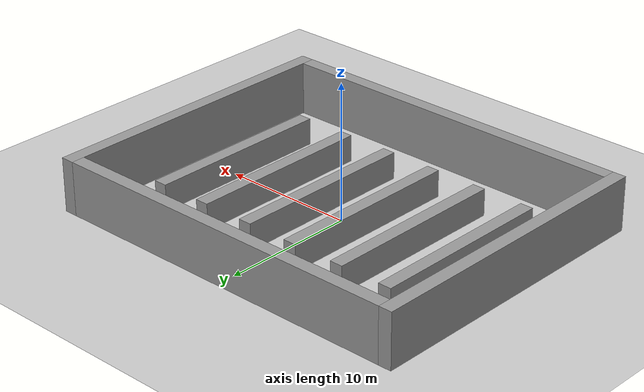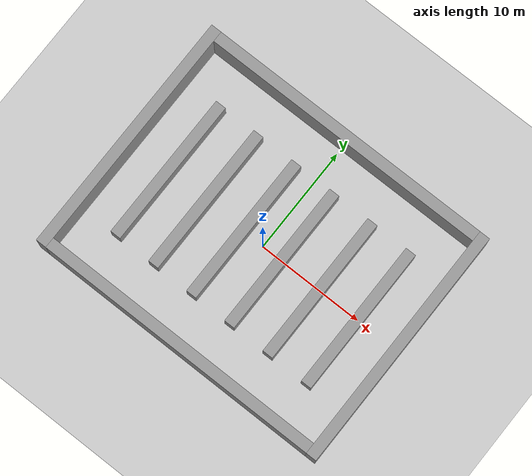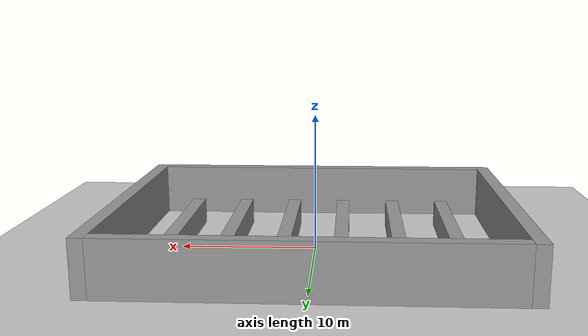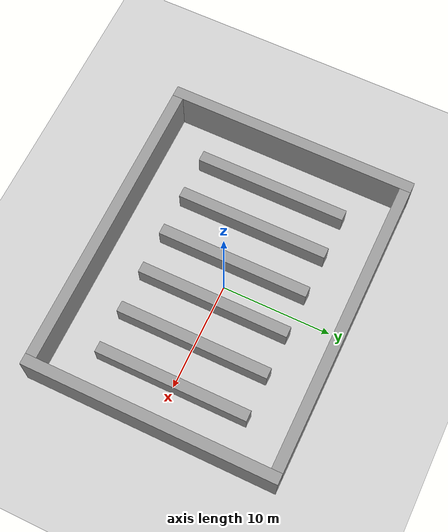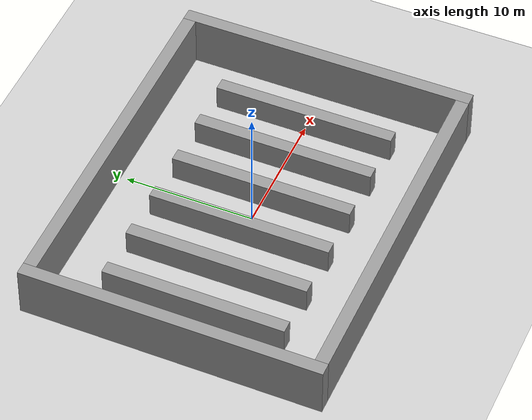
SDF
<sdf version="1.6">
 <world name="default">
  <light name="sun" type="directional">
   <pose>0 0 10 0 -0 0</pose>
   <diffuse>0.8 0.8 0.8 1</diffuse>
   <specular>0.2 0.2 0.2 1</specular>
   <attenuation>
    <range>1000</range>
    <constant>0.9</constant>
    <linear>0.01</linear>
    <quadratic>0.001</quadratic>
   </attenuation>
   <direction>-0.5 0.1 -0.9</direction>
  </light>
  <model name="ground_plane">
   <static>1</static>
   <link name="link">
    <collision name="collision">
     <geometry><plane><normal>0 0 1</normal><size>100 100</size></plane></geometry>
     <surface>
      <contact><collide_bitmask>65535</collide_bitmask></contact>
      <friction><ode><mu>100</mu><mu2>50</mu2></ode></friction>
     </surface>
    </collision>
    <visual name="visual">
     <cast_shadows>0</cast_shadows>
     <geometry><plane><normal>0 0 1</normal><size>100 100</size></plane></geometry>
     <material>
      <script><uri>file://media/materials/scripts/gazebo.material</uri><name>Gazebo/Grey</name></script>
     </material>
    </visual>
   </link>
  </model>
  <gravity>0 0 -9.8</gravity>
  <magnetic_field>6e-06 2.3e-05 -4.2e-05</magnetic_field>
  <atmosphere type="adiabatic"/>
  <physics name="default_physics" default="0" type="ode">
   <max_step_size>0.001</max_step_size>
   <real_time_factor>1</real_time_factor>
   <real_time_update_rate>1000</real_time_update_rate>
  </physics>
  <scene><ambient>0.4 0.4 0.4 1</ambient><background>0.7 0.7 0.7 1</background><shadows>1</shadows></scene>
  <audio><device>default</device></audio>
  <spherical_coordinates>
   <surface_model>EARTH_WGS84</surface_model>
   <latitude_deg>0</latitude_deg>
   <longitude_deg>0</longitude_deg>
   <elevation>0</elevation>
   <heading_deg>0</heading_deg>
  </spherical_coordinates>
  <model name="shelf">
   <link name="link">
    <inertial>
     <mass>1</mass>
     <inertia>
      <ixx>0.166667</ixx>
      <ixy>0</ixy>
      <ixz>0</ixz>
      <iyy>0.166667</iyy>
      <iyz>0</iyz>
      <izz>0.166667</izz>
     </inertia>
    </inertial>
    <visual name="visual">
     <geometry><box><size>1 14 2</size></box></geometry>
     <material>
      <script><name>Gazebo/Grey</name><uri>file://media/materials/scripts/gazebo.material</uri></script>
     </material>
    </visual>
    <collision name="collision">
     <geometry><box><size>1 14 2</size></box></geometry>
     <surface>
      <friction>
       <ode><mu>1</mu><mu2>1</mu2><fdir1>0 0 0</fdir1><slip1>0</slip1><slip2>0</slip2></ode>
       <torsional>
        <coefficient>1</coefficient>
        <patch_radius>0</patch_radius>
        <surface_radius>0</surface_radius>
        <use_patch_radius>1</use_patch_radius>
        <ode><slip>0</slip></ode>
       </torsional>
      </friction>
      <bounce><restitution_coefficient>0</restitution_coefficient><threshold>1e+06</threshold></bounce>
      <contact>
       <collide_without_contact>0</collide_without_contact>
       <collide_without_contact_bitmask>1</collide_without_contact_bitmask>
       <collide_bitmask>1</collide_bitmask>
       <ode>
        <soft_cfm>0</soft_cfm>
        <soft_erp>0.2</soft_erp>
        <kp>1e+13</kp>
        <kd>1</kd>
        <max_vel>0.01</max_vel>
        <min_depth>0</min_depth>
       </ode>
       <bullet>
        <split_impulse>1</split_impulse>
        <split_impulse_penetration_threshold>-0.01</split_impulse_penetration_threshold>
        <soft_cfm>0</soft_cfm>
        <soft_erp>0.2</soft_erp>
        <kp>1e+13</kp>
        <kd>1</kd>
       </bullet>
      </contact>
     </surface>
    </collision>
   </link>
   <static>1</static>
   <pose>-10 0 1 0 -0 0</pose>
  </model>
  <model name="shelf_0">
   <link name="link">
    <inertial>
     <mass>1</mass>
     <inertia>
      <ixx>0.166667</ixx>
      <ixy>0</ixy>
      <ixz>0</ixz>
      <iyy>0.166667</iyy>
      <iyz>0</iyz>
      <izz>0.166667</izz>
     </inertia>
    </inertial>
    <visual name="visual">
     <geometry><box><size>1 14 2</size></box></geometry>
     <material>
      <script><name>Gazebo/Grey</name><uri>file://media/materials/scripts/gazebo.material</uri></script>
     </material>
    </visual>
    <collision name="collision">
     <geometry><box><size>1 14 2</size></box></geometry>
     <surface>
      <friction>
       <ode><mu>1</mu><mu2>1</mu2><fdir1>0 0 0</fdir1><slip1>0</slip1><slip2>0</slip2></ode>
       <torsional>
        <coefficient>1</coefficient>
        <patch_radius>0</patch_radius>
        <surface_radius>0</surface_radius>
        <use_patch_radius>1</use_patch_radius>
        <ode><slip>0</slip></ode>
       </torsional>
      </friction>
      <bounce><restitution_coefficient>0</restitution_coefficient><threshold>1e+06</threshold></bounce>
      <contact>
       <collide_without_contact>0</collide_without_contact>
       <collide_without_contact_bitmask>1</collide_without_contact_bitmask>
       <collide_bitmask>1</collide_bitmask>
       <ode>
        <soft_cfm>0</soft_cfm>
        <soft_erp>0.2</soft_erp>
        <kp>1e+13</kp>
        <kd>1</kd>
        <max_vel>0.01</max_vel>
        <min_depth>0</min_depth>
       </ode>
       <bullet>
        <split_impulse>1</split_impulse>
        <split_impulse_penetration_threshold>-0.01</split_impulse_penetration_threshold>
        <soft_cfm>0</soft_cfm>
        <soft_erp>0.2</soft_erp>
        <kp>1e+13</kp>
        <kd>1</kd>
       </bullet>
      </contact>
     </surface>
    </collision>
   </link>
   <static>1</static>
   <pose>-6 0 1 0 -0 0</pose>
  </model>
  <model name="shelf_1">
   <link name="link">
    <inertial>
     <mass>1</mass>
     <inertia>
      <ixx>0.166667</ixx>
      <ixy>0</ixy>
      <ixz>0</ixz>
      <iyy>0.166667</iyy>
      <iyz>0</iyz>
      <izz>0.166667</izz>
     </inertia>
    </inertial>
    <visual name="visual">
     <geometry><box><size>1 14 2</size></box></geometry>
     <material>
      <script><name>Gazebo/Grey</name><uri>file://media/materials/scripts/gazebo.material</uri></script>
     </material>
    </visual>
    <collision name="collision">
     <geometry><box><size>1 14 2</size></box></geometry>
     <surface>
      <friction>
       <ode><mu>1</mu><mu2>1</mu2><fdir1>0 0 0</fdir1><slip1>0</slip1><slip2>0</slip2></ode>
       <torsional>
        <coefficient>1</coefficient>
        <patch_radius>0</patch_radius>
        <surface_radius>0</surface_radius>
        <use_patch_radius>1</use_patch_radius>
        <ode><slip>0</slip></ode>
       </torsional>
      </friction>
      <bounce><restitution_coefficient>0</restitution_coefficient><threshold>1e+06</threshold></bounce>
      <contact>
       <collide_without_contact>0</collide_without_contact>
       <collide_without_contact_bitmask>1</collide_without_contact_bitmask>
       <collide_bitmask>1</collide_bitmask>
       <ode>
        <soft_cfm>0</soft_cfm>
        <soft_erp>0.2</soft_erp>
        <kp>1e+13</kp>
        <kd>1</kd>
        <max_vel>0.01</max_vel>
        <min_depth>0</min_depth>
       </ode>
       <bullet>
        <split_impulse>1</split_impulse>
        <split_impulse_penetration_threshold>-0.01</split_impulse_penetration_threshold>
        <soft_cfm>0</soft_cfm>
        <soft_erp>0.2</soft_erp>
        <kp>1e+13</kp>
        <kd>1</kd>
       </bullet>
      </contact>
     </surface>
    </collision>
   </link>
   <static>1</static>
   <pose>-2 0 1 0 -0 0</pose>
  </model>
  <model name="shelf_2">
   <link name="link">
    <inertial>
     <mass>1</mass>
     <inertia>
      <ixx>0.166667</ixx>
      <ixy>0</ixy>
      <ixz>0</ixz>
      <iyy>0.166667</iyy>
      <iyz>0</iyz>
      <izz>0.166667</izz>
     </inertia>
    </inertial>
    <visual name="visual">
     <geometry><box><size>1 14 2</size></box></geometry>
     <material>
      <script><name>Gazebo/Grey</name><uri>file://media/materials/scripts/gazebo.material</uri></script>
     </material>
    </visual>
    <collision name="collision">
     <geometry><box><size>1 14 2</size></box></geometry>
     <surface>
      <friction>
       <ode><mu>1</mu><mu2>1</mu2><fdir1>0 0 0</fdir1><slip1>0</slip1><slip2>0</slip2></ode>
       <torsional>
        <coefficient>1</coefficient>
        <patch_radius>0</patch_radius>
        <surface_radius>0</surface_radius>
        <use_patch_radius>1</use_patch_radius>
        <ode><slip>0</slip></ode>
       </torsional>
      </friction>
      <bounce><restitution_coefficient>0</restitution_coefficient><threshold>1e+06</threshold></bounce>
      <contact>
       <collide_without_contact>0</collide_without_contact>
       <collide_without_contact_bitmask>1</collide_without_contact_bitmask>
       <collide_bitmask>1</collide_bitmask>
       <ode>
        <soft_cfm>0</soft_cfm>
        <soft_erp>0.2</soft_erp>
        <kp>1e+13</kp>
        <kd>1</kd>
        <max_vel>0.01</max_vel>
        <min_depth>0</min_depth>
       </ode>
       <bullet>
        <split_impulse>1</split_impulse>
        <split_impulse_penetration_threshold>-0.01</split_impulse_penetration_threshold>
        <soft_cfm>0</soft_cfm>
        <soft_erp>0.2</soft_erp>
        <kp>1e+13</kp>
        <kd>1</kd>
       </bullet>
      </contact>
     </surface>
    </collision>
   </link>
   <static>1</static>
   <pose>2 0 1 0 -0 0</pose>
  </model>
  <model name="shelf_3">
   <link name="link">
    <inertial>
     <mass>1</mass>
     <inertia>
      <ixx>0.166667</ixx>
      <ixy>0</ixy>
      <ixz>0</ixz>
      <iyy>0.166667</iyy>
      <iyz>0</iyz>
      <izz>0.166667</izz>
     </inertia>
    </inertial>
    <visual name="visual">
     <geometry><box><size>1 14 2</size></box></geometry>
     <material>
      <script><name>Gazebo/Grey</name><uri>file://media/materials/scripts/gazebo.material</uri></script>
     </material>
    </visual>
    <collision name="collision">
     <geometry><box><size>1 14 2</size></box></geometry>
     <surface>
      <friction>
       <ode><mu>1</mu><mu2>1</mu2><fdir1>0 0 0</fdir1><slip1>0</slip1><slip2>0</slip2></ode>
       <torsional>
        <coefficient>1</coefficient>
        <patch_radius>0</patch_radius>
        <surface_radius>0</surface_radius>
        <use_patch_radius>1</use_patch_radius>
        <ode><slip>0</slip></ode>
       </torsional>
      </friction>
      <bounce><restitution_coefficient>0</restitution_coefficient><threshold>1e+06</threshold></bounce>
      <contact>
       <collide_without_contact>0</collide_without_contact>
       <collide_without_contact_bitmask>1</collide_without_contact_bitmask>
       <collide_bitmask>1</collide_bitmask>
       <ode>
        <soft_cfm>0</soft_cfm>
        <soft_erp>0.2</soft_erp>
        <kp>1e+13</kp>
        <kd>1</kd>
        <max_vel>0.01</max_vel>
        <min_depth>0</min_depth>
       </ode>
       <bullet>
        <split_impulse>1</split_impulse>
        <split_impulse_penetration_threshold>-0.01</split_impulse_penetration_threshold>
        <soft_cfm>0</soft_cfm>
        <soft_erp>0.2</soft_erp>
        <kp>1e+13</kp>
        <kd>1</kd>
       </bullet>
      </contact>
     </surface>
    </collision>
   </link>
   <static>1</static>
   <pose>6 0 1 0 -0 0</pose>
  </model>
  <model name="shelf_4">
   <link name="link">
    <inertial>
     <mass>1</mass>
     <inertia>
      <ixx>0.166667</ixx>
      <ixy>0</ixy>
      <ixz>0</ixz>
      <iyy>0.166667</iyy>
      <iyz>0</iyz>
      <izz>0.166667</izz>
     </inertia>
    </inertial>
    <visual name="visual">
     <geometry><box><size>1 14 2</size></box></geometry>
     <material>
      <script><name>Gazebo/Grey</name><uri>file://media/materials/scripts/gazebo.material</uri></script>
     </material>
    </visual>
    <collision name="collision">
     <geometry><box><size>1 14 2</size></box></geometry>
     <surface>
      <friction>
       <ode><mu>1</mu><mu2>1</mu2><fdir1>0 0 0</fdir1><slip1>0</slip1><slip2>0</slip2></ode>
       <torsional>
        <coefficient>1</coefficient>
        <patch_radius>0</patch_radius>
        <surface_radius>0</surface_radius>
        <use_patch_radius>1</use_patch_radius>
        <ode><slip>0</slip></ode>
       </torsional>
      </friction>
      <bounce><restitution_coefficient>0</restitution_coefficient><threshold>1e+06</threshold></bounce>
      <contact>
       <collide_without_contact>0</collide_without_contact>
       <collide_without_contact_bitmask>1</collide_without_contact_bitmask>
       <collide_bitmask>1</collide_bitmask>
       <ode>
        <soft_cfm>0</soft_cfm>
        <soft_erp>0.2</soft_erp>
        <kp>1e+13</kp>
        <kd>1</kd>
        <max_vel>0.01</max_vel>
        <min_depth>0</min_depth>
       </ode>
       <bullet>
        <split_impulse>1</split_impulse>
        <split_impulse_penetration_threshold>-0.01</split_impulse_penetration_threshold>
        <soft_cfm>0</soft_cfm>
        <soft_erp>0.2</soft_erp>
        <kp>1e+13</kp>
        <kd>1</kd>
       </bullet>
      </contact>
     </surface>
    </collision>
   </link>
   <static>1</static>
   <pose>10 0 1 0 -0 0</pose>
  </model>
  <model name="wall1">
   <link name="link_0">
    <inertial>
     <mass>108.001</mass>
     <inertia><ixx>153</ixx><ixy>0</ixy><ixz>0</ixz><iyy>6705.03</iyy><iyz>0</iyz><izz>6570.03</izz></inertia>
    </inertial>
    <visual name="visual">
     <geometry><box><size>27 1 3.99999</size></box></geometry>
     <material>
      <lighting>1</lighting>
      <script><uri>file://media/materials/scripts/gazebo.material</uri><name>Gazebo/Grey</name></script>
     </material>
    </visual>
    <collision name="collision">
     <geometry><box><size>27 1 3.99999</size></box></geometry>
     <surface>
      <friction>
       <ode><mu>1</mu><mu2>1</mu2><fdir1>0 0 0</fdir1><slip1>0</slip1><slip2>0</slip2></ode>
       <torsional>
        <coefficient>1</coefficient>
        <patch_radius>0</patch_radius>
        <surface_radius>0</surface_radius>
        <use_patch_radius>1</use_patch_radius>
        <ode><slip>0</slip></ode>
       </torsional>
      </friction>
      <bounce><restitution_coefficient>0</restitution_coefficient><threshold>1e+06</threshold></bounce>
      <contact>
       <collide_without_contact>0</collide_without_contact>
       <collide_without_contact_bitmask>1</collide_without_contact_bitmask>
       <collide_bitmask>1</collide_bitmask>
       <ode>
        <soft_cfm>0</soft_cfm>
        <soft_erp>0.2</soft_erp>
        <kp>1e+13</kp>
        <kd>1</kd>
        <max_vel>0.01</max_vel>
        <min_depth>0</min_depth>
       </ode>
       <bullet>
        <split_impulse>1</split_impulse>
        <split_impulse_penetration_threshold>-0.01</split_impulse_penetration_threshold>
        <soft_cfm>0</soft_cfm>
        <soft_erp>0.2</soft_erp>
        <kp>1e+13</kp>
        <kd>1</kd>
       </bullet>
      </contact>
     </surface>
    </collision>
   </link>
   <static>1</static>
   <pose>0 -11 2 0 -0 0</pose>
  </model>
  <model name="wall1_0">
   <link name="link_0">
    <inertial>
     <mass>108.001</mass>
     <inertia><ixx>153</ixx><ixy>0</ixy><ixz>0</ixz><iyy>6705.03</iyy><iyz>0</iyz><izz>6570.03</izz></inertia>
    </inertial>
    <visual name="visual">
     <geometry><box><size>27 1 3.99999</size></box></geometry>
     <material>
      <lighting>1</lighting>
      <script><uri>file://media/materials/scripts/gazebo.material</uri><name>Gazebo/Grey</name></script>
     </material>
    </visual>
    <collision name="collision">
     <geometry><box><size>27 1 3.99999</size></box></geometry>
     <surface>
      <friction>
       <ode><mu>1</mu><mu2>1</mu2><fdir1>0 0 0</fdir1><slip1>0</slip1><slip2>0</slip2></ode>
       <torsional>
        <coefficient>1</coefficient>
        <patch_radius>0</patch_radius>
        <surface_radius>0</surface_radius>
        <use_patch_radius>1</use_patch_radius>
        <ode><slip>0</slip></ode>
       </torsional>
      </friction>
      <bounce><restitution_coefficient>0</restitution_coefficient><threshold>1e+06</threshold></bounce>
      <contact>
       <collide_without_contact>0</collide_without_contact>
       <collide_without_contact_bitmask>1</collide_without_contact_bitmask>
       <collide_bitmask>1</collide_bitmask>
       <ode>
        <soft_cfm>0</soft_cfm>
        <soft_erp>0.2</soft_erp>
        <kp>1e+13</kp>
        <kd>1</kd>
        <max_vel>0.01</max_vel>
        <min_depth>0</min_depth>
       </ode>
       <bullet>
        <split_impulse>1</split_impulse>
        <split_impulse_penetration_threshold>-0.01</split_impulse_penetration_threshold>
        <soft_cfm>0</soft_cfm>
        <soft_erp>0.2</soft_erp>
        <kp>1e+13</kp>
        <kd>1</kd>
       </bullet>
      </contact>
     </surface>
    </collision>
   </link>
   <static>1</static>
   <pose>0 11 2 0 -0 0</pose>
  </model>
  <model name="wall2">
   <link name="link_0">
    <inertial>
     <mass>92.0004</mass>
     <inertia><ixx>4178.36</ixx><ixy>0</ixy><ixz>0</ixz><iyy>130.334</iyy><iyz>0</iyz><izz>4063.36</izz></inertia>
    </inertial>
    <visual name="visual">
     <geometry><box><size>1 23 4</size></box></geometry>
     <material>
      <lighting>1</lighting>
      <script><uri>file://media/materials/scripts/gazebo.material</uri><name>Gazebo/Grey</name></script>
     </material>
    </visual>
    <collision name="collision">
     <geometry><box><size>1 23 4</size></box></geometry>
     <surface>
      <friction>
       <ode><mu>1</mu><mu2>1</mu2><fdir1>0 0 0</fdir1><slip1>0</slip1><slip2>0</slip2></ode>
       <torsional>
        <coefficient>1</coefficient>
        <patch_radius>0</patch_radius>
        <surface_radius>0</surface_radius>
        <use_patch_radius>1</use_patch_radius>
        <ode><slip>0</slip></ode>
       </torsional>
      </friction>
      <bounce><restitution_coefficient>0</restitution_coefficient><threshold>1e+06</threshold></bounce>
      <contact>
       <collide_without_contact>0</collide_without_contact>
       <collide_without_contact_bitmask>1</collide_without_contact_bitmask>
       <collide_bitmask>1</collide_bitmask>
       <ode>
        <soft_cfm>0</soft_cfm>
        <soft_erp>0.2</soft_erp>
        <kp>1e+13</kp>
        <kd>1</kd>
        <max_vel>0.01</max_vel>
        <min_depth>0</min_depth>
       </ode>
       <bullet>
        <split_impulse>1</split_impulse>
        <split_impulse_penetration_threshold>-0.01</split_impulse_penetration_threshold>
        <soft_cfm>0</soft_cfm>
        <soft_erp>0.2</soft_erp>
        <kp>1e+13</kp>
        <kd>1</kd>
       </bullet>
      </contact>
     </surface>
    </collision>
   </link>
   <static>1</static>
   <pose>14 0 2 0 -0 0</pose>
  </model>
  <model name="wall2_0">
   <link name="link_0">
    <inertial>
     <mass>92.0004</mass>
     <inertia><ixx>4178.36</ixx><ixy>0</ixy><ixz>0</ixz><iyy>130.334</iyy><iyz>0</iyz><izz>4063.36</izz></inertia>
    </inertial>
    <visual name="visual">
     <geometry><box><size>1 23 4</size></box></geometry>
     <material>
      <lighting>1</lighting>
      <script><uri>file://media/materials/scripts/gazebo.material</uri><name>Gazebo/Grey</name></script>
     </material>
    </visual>
    <collision name="collision">
     <geometry><box><size>1 23 4</size></box></geometry>
     <surface>
      <friction>
       <ode><mu>1</mu><mu2>1</mu2><fdir1>0 0 0</fdir1><slip1>0</slip1><slip2>0</slip2></ode>
       <torsional>
        <coefficient>1</coefficient>
        <patch_radius>0</patch_radius>
        <surface_radius>0</surface_radius>
        <use_patch_radius>1</use_patch_radius>
        <ode><slip>0</slip></ode>
       </torsional>
      </friction>
      <bounce><restitution_coefficient>0</restitution_coefficient><threshold>1e+06</threshold></bounce>
      <contact>
       <collide_without_contact>0</collide_without_contact>
       <collide_without_contact_bitmask>1</collide_without_contact_bitmask>
       <collide_bitmask>1</collide_bitmask>
       <ode>
        <soft_cfm>0</soft_cfm>
        <soft_erp>0.2</soft_erp>
        <kp>1e+13</kp>
        <kd>1</kd>
        <max_vel>0.01</max_vel>
        <min_depth>0</min_depth>
       </ode>
       <bullet>
        <split_impulse>1</split_impulse>
        <split_impulse_penetration_threshold>-0.01</split_impulse_penetration_threshold>
        <soft_cfm>0</soft_cfm>
        <soft_erp>0.2</soft_erp>
        <kp>1e+13</kp>
        <kd>1</kd>
       </bullet>
      </contact>
     </surface>
    </collision>
   </link>
   <static>1</static>
   <pose>-14 0 2 0 -0 0</pose>
  </model>
 </world>
</sdf>
